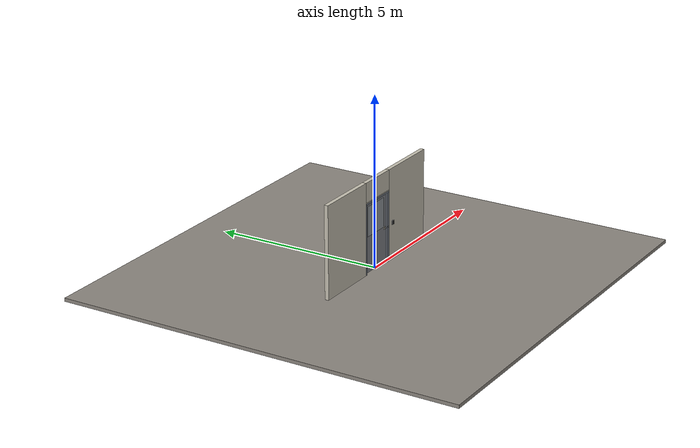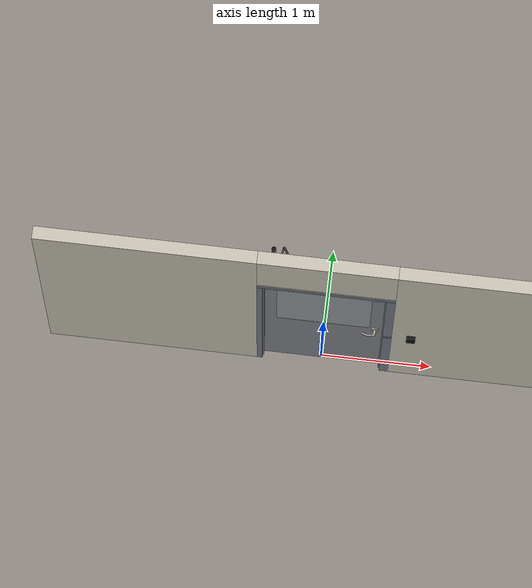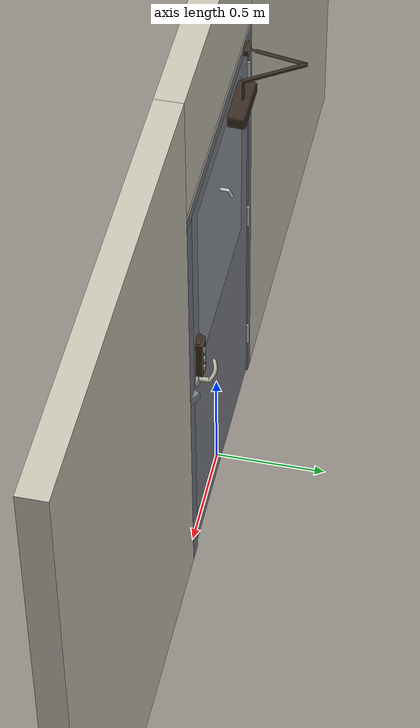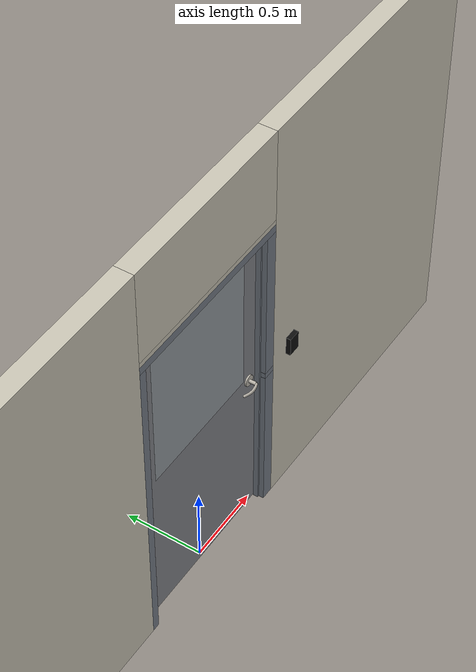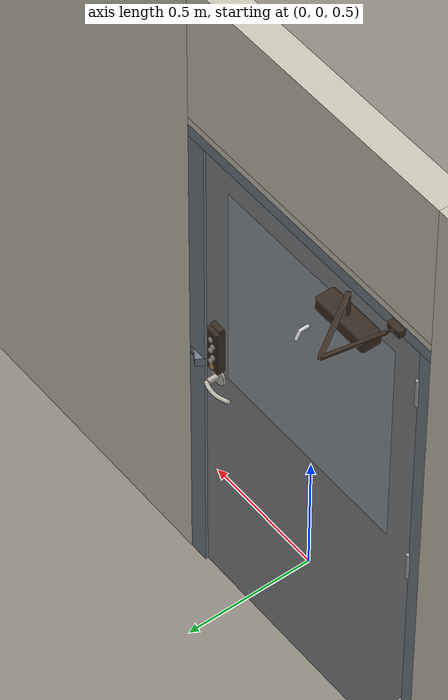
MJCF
<?xml version="1.0" ?>
<mujoco model="db0861_swing_single_full">
  <compiler angle="radian" meshdir="../../hardware" texturedir="../../textures" autolimits="true" inertiafromgeom="false"/>
  <option timestep="0.002" integrator="implicitfast" cone="elliptic" impratio="10" noslip_iterations="3">
    <flag multiccd="enable"/>
  </option>
  <size memory="16M"/>
  <default>
    <geom condim="4" solref="0.005 1" solimp="0.95 0.99 0.001"/>
    <joint solreflimit="0.005 1" solimplimit="0.95 0.99 0.001"/>
    <tendon solreflimit="0.005 1"/>
    <equality solref="0.002 1"/>
  </default>
  <visual>
    <headlight ambient="0.4 0.4 0.4" diffuse="0.7 0.7 0.7" specular="0.2 0.2 0.2"/>
    <quality shadowsize="4096"/>
    <map znear="0.01" zfar="60"/>
  </visual>
  <asset>
    <mesh name="closer_body_b226fdb10b" file="closer_body_b226fdb10b.obj"/>
    <mesh name="coat_hook_d622d37ad0" file="coat_hook_d622d37ad0.obj"/>
    <mesh name="hinge_e22b26c0c1" file="hinge_e22b26c0c1.obj"/>
    <mesh name="hinge_jamb_e1d088f8dc" file="hinge_jamb_e1d088f8dc.obj"/>
    <mesh name="keypad_body_91eb8ded3e" file="keypad_body_91eb8ded3e.obj"/>
    <mesh name="lever_a61139b160" file="lever_a61139b160.obj"/>
    <material name="mat_floor" rgba="0.55 0.53 0.5 1" specular="0.2" shininess="0.15" reflectance="0"/>
    <material name="mat_wall" rgba="0.78 0.76 0.7 1" specular="0.2" shininess="0.1" reflectance="0"/>
    <material name="mat_leaf" rgba="0.5 0.51 0.53 1" specular="0.23" shininess="0.37" reflectance="0.02"/>
    <material name="mat_glass" rgba="0.85 0.92 0.95 0.25" specular="0.2" shininess="0.95" reflectance="0.1"/>
    <material name="mat_hinge" rgba="0.65 0.66 0.68 1" specular="0.74" shininess="0.5" reflectance="0.36"/>
    <material name="mat_op_nickel_satin" rgba="0.72 0.7 0.66 1" specular="0.8" shininess="0.65" reflectance="0.4"/>
    <material name="mat_trim" rgba="0.85 0.66 0.3 1" specular="0.8" shininess="0.75" reflectance="0.4"/>
    <material name="mat_keypad" rgba="0.22 0.17 0.13 1" specular="0.8" shininess="0.6" reflectance="0.4"/>
    <material name="mat_key" rgba="0.85 0.85 0.82 1" specular="0.2" shininess="0.5" reflectance="0"/>
    <material name="mat_bolt" rgba="0.75 0.76 0.77 1" specular="0.8" shininess="0.65" reflectance="0.4"/>
    <material name="mat_frame" rgba="0.45 0.48 0.52 1" specular="0.32" shininess="0.6" reflectance="0.08"/>
    <material name="mat_closer" rgba="0.22 0.17 0.13 1" specular="0.8" shininess="0.6" reflectance="0.4"/>
    <material name="mat_hook" rgba="0.9 0.9 0.92 1" specular="0.8" shininess="0.9" reflectance="0.4"/>
    <material name="mat_wallreader" rgba="0.05 0.05 0.05 1" specular="0.38" shininess="0.3" reflectance="0.12"/>
    <material name="mat_bumper_stop" rgba="0.08 0.08 0.08 1" specular="0.2" shininess="0.1" reflectance="0"/>
    <material name="mat_stop_base" rgba="0.9 0.9 0.92 1" specular="0.8" shininess="0.9" reflectance="0.4"/>
    <texture name="skybox" type="skybox" builtin="gradient" rgb1="0.6 0.7 0.85" rgb2="0.9 0.92 0.95" width="256" height="256"/>
  </asset>
  <worldbody>
    <light name="sun" pos="1.5 -2.5 4" dir="-0.3 0.5 -0.8" directional="true" diffuse="0.8 0.8 0.8" specular="0.3 0.3 0.3" castshadow="true"/>
    <light name="fill" pos="-1.5 2.5 3" dir="0.3 -0.5 -0.7" directional="true" diffuse="0.35 0.35 0.4" castshadow="false"/>
    <camera name="robot_view" pos="0 -2.570688 1.734312" xyaxes="1 0 0 0 0.26963 0.962964" fovy="52"/>
    <camera name="far_view" pos="0 2.513687 1.734312" xyaxes="-1 0 0 0 -0.26963 0.962964" fovy="52"/>
    <camera name="iso" pos="1.932062 -2.163938 2.141063" xyaxes="0.741536 0.670913 0 -0.242917 0.268487 0.932151" fovy="46"/>
    <camera name="detail_handle" pos="0.5534 -0.877 1.32" xyaxes="0.97561 0.219512 0 -0.070934 0.315262 0.94635" fovy="38"/>
    <geom name="floor" type="box" size="6 6 0.05" pos="0 0 -0.05" material="mat_floor" group="0" contype="1" conaffinity="1" friction="0.8 0.005 0.0001" density="2400"/>
    <geom name="wall_left" type="box" size="0.9565 0.0575 1.35" pos="-1.5435 -0.0285 1.35" material="mat_wall" group="0" contype="1" conaffinity="1" friction="0.6 0.005 0.0001" density="800"/>
    <geom name="wall_right" type="box" size="0.9415 0.0575 1.35" pos="1.5585 -0.0285 1.35" material="mat_wall" group="0" contype="1" conaffinity="1" friction="0.6 0.005 0.0001" density="800"/>
    <geom name="wall_header" type="box" size="0.602 0.0575 0.2875" pos="0.015 -0.0285 2.4125" material="mat_wall" group="0" contype="1" conaffinity="1" friction="0.6 0.005 0.0001" density="800"/>
    <geom name="hinge_0_jamb" type="mesh" mesh="hinge_jamb_e1d088f8dc" pos="-0.534 0.029 0.259" quat="0 1 0 0" material="mat_hinge" group="1" contype="0" conaffinity="0" density="7850"/>
    <geom name="hinge_1_jamb" type="mesh" mesh="hinge_jamb_e1d088f8dc" pos="-0.534 0.029 1.025" quat="0 1 0 0" material="mat_hinge" group="1" contype="0" conaffinity="0" density="7850"/>
    <geom name="hinge_2_jamb" type="mesh" mesh="hinge_jamb_e1d088f8dc" pos="-0.534 0.029 1.861" quat="0 1 0 0" material="mat_hinge" group="1" contype="0" conaffinity="0" density="7850"/>
    <geom name="jamb_hinge" type="box" size="0.025 0.0575 1.0225" pos="-0.562 -0.0285 1.0225" material="mat_frame" group="0" contype="1" conaffinity="1" friction="0.6 0.005 0.0001" density="300"/>
    <geom name="strike_1040_wall_n" type="box" size="0.04 0.03825 0.018" pos="0.577 -0.04775 1.04" material="mat_frame" group="0" contype="1" conaffinity="1" friction="0.6 0.005 0.0001" density="300"/>
    <geom name="strike_1040_wall_p" type="box" size="0.04 0.008 0.018" pos="0.577 0.0175 1.04" material="mat_frame" group="0" contype="1" conaffinity="1" friction="0.6 0.005 0.0001" density="300"/>
    <geom name="strike_1040_ramp" type="box" size="0.04 0.018028 0.018" pos="0.580282 0.018312 1.04" quat="0.957092 0 0 -0.289784" material="mat_frame" group="0" contype="1" conaffinity="1" friction="0.12 0.005 0.0001" density="300"/>
    <geom name="strike_1040_back" type="box" size="0.0285 0.0095 0.018" pos="0.5885 0 1.04" material="mat_frame" group="0" contype="1" conaffinity="1" friction="0.6 0.005 0.0001" density="300"/>
    <geom name="jamb_strike_0" type="box" size="0.04 0.0575 0.511" pos="0.577 -0.0285 0.511" material="mat_frame" group="0" contype="1" conaffinity="1" friction="0.6 0.005 0.0001" density="300"/>
    <geom name="jamb_strike_1" type="box" size="0.04 0.0575 0.4935" pos="0.577 -0.0285 1.5515" material="mat_frame" group="0" contype="1" conaffinity="1" friction="0.6 0.005 0.0001" density="300"/>
    <geom name="jamb_head" type="box" size="0.602 0.0575 0.025" pos="0.015 -0.0285 2.07" material="mat_frame" group="0" contype="1" conaffinity="1" friction="0.6 0.005 0.0001" density="300"/>
    <geom name="head_stud" type="box" size="0.602 0.0575 0.015" pos="0.015 -0.0285 2.11" material="mat_wall" group="0" contype="1" conaffinity="1" friction="0.6 0.005 0.0001" density="500"/>
    <geom name="stop_hinge" type="box" size="0.0055 0.016 1.0225" pos="-0.5315 -0.0385 1.0225" material="mat_frame" group="0" contype="1" conaffinity="1" friction="0.6 0.005 0.0001" density="300"/>
    <geom name="stop_strike" type="box" size="0.0055 0.016 1.0225" pos="0.5315 -0.0385 1.0225" material="mat_frame" group="0" contype="1" conaffinity="1" friction="0.6 0.005 0.0001" density="300"/>
    <geom name="stop_head" type="box" size="0.537 0.016 0.0055" pos="0 -0.0385 2.0395" material="mat_frame" group="0" contype="1" conaffinity="1" friction="0.6 0.005 0.0001" density="300"/>
    <geom name="closer_bracket" type="box" size="0.03 0.012 0.014" pos="-0.437 0.041 2.075" material="mat_closer" group="1" contype="0" conaffinity="0" density="2700"/>
    <geom name="wall_reader" type="box" size="0.04 0.015 0.06" pos="0.787 -0.101 1.1" material="mat_wallreader" group="0" contype="1" conaffinity="1" friction="0.6 0.005 0.0001" density="1000"/>
    <geom name="door_stop_base" type="cylinder" size="0.022 0.003" pos="-0.55 0.93595 0.003" material="mat_stop_base" group="0" contype="1" conaffinity="1" friction="0.6 0.005 0.0001" density="7850"/>
    <geom name="door_stop_post" type="cylinder" size="0.012 0.0245" pos="-0.55 0.93595 0.0305" material="mat_stop_base" group="0" contype="1" conaffinity="1" friction="0.6 0.005 0.0001" density="7850"/>
    <geom name="door_stop_bumper" type="cylinder" size="0.022 0.02" pos="-0.55 0.93595 0.075" material="mat_bumper_stop" group="0" contype="1" conaffinity="1" friction="0.6 0.005 0.0001" density="1100"/>
    <site name="approach_point" pos="0 -1.5 0" quat="1 0 0 0" size="0.05" rgba="0.2 0.9 0.2 0.5" group="4"/>
    <site name="goal_point" pos="0 1.5 0" quat="1 0 0 0" size="0.05" rgba="0.2 0.9 0.2 0.5" group="4"/>
    <site name="door_plane_center" pos="0 0 1.0225" quat="1 0 0 0" size="0.02" rgba="0.2 0.9 0.2 0.5" group="4"/>
    <body name="leaf" pos="-0.537 0 0">
      <inertial pos="0.492879 0.012222 1.197245" mass="52.92137" quat="0.525666 0.522406 0.466032 -0.483303" diaginertia="4.725530313 21.588691039 26.249608185"/>
      <joint name="leaf_hinge" type="hinge" axis="0 0 1" pos="0.003 0.029 0" limited="true" range="0 1.570796" damping="10.475663" frictionloss="0.888228" stiffness="15.673579" springref="-1.79155" armature="0.02"/>
      <geom name="leaf_slab" type="box" size="0.5335 0.022 1.016" pos="0.5365 0 1.025" material="mat_leaf" group="0" contype="1" conaffinity="1" friction="0.4 0.005 0.0001" density="1"/>
      <geom name="leaf_glass_0" type="box" size="0.41613 0.0228 0.43688" pos="0.5365 0 1.50252" material="mat_glass" group="1" contype="0" conaffinity="0" density="1"/>
      <geom name="hinge_0" type="mesh" mesh="hinge_e22b26c0c1" pos="0.003 0.029 0.259" quat="0 1 0 0" material="mat_hinge" group="1" contype="0" conaffinity="0" density="7850"/>
      <geom name="hinge_1" type="mesh" mesh="hinge_e22b26c0c1" pos="0.003 0.029 1.025" quat="0 1 0 0" material="mat_hinge" group="1" contype="0" conaffinity="0" density="7850"/>
      <geom name="hinge_2" type="mesh" mesh="hinge_e22b26c0c1" pos="0.003 0.029 1.861" quat="0 1 0 0" material="mat_hinge" group="1" contype="0" conaffinity="0" density="7850"/>
      <geom name="leaf_keypad_body" type="mesh" mesh="keypad_body_91eb8ded3e" pos="1 0.022 1.18" quat="0 0 0.707107 0.707107" material="mat_keypad" group="0" contype="1" conaffinity="1" friction="0.6 0.005 0.0001" density="2000"/>
      <geom name="leaf_keypad_cylinder" type="cylinder" size="0.009 0.002" pos="1 0.056 1.105" quat="0.707107 -0.707107 0 0" material="mat_trim" group="1" contype="0" conaffinity="0" density="7100"/>
      <geom name="leaf_latch_bolt_faceplate" type="box" size="0.0006 0.014 0.028" pos="1.0694 0 1.04" material="mat_bolt" group="1" contype="0" conaffinity="0" density="8500"/>
      <geom name="closer_body" type="mesh" mesh="closer_body_b226fdb10b" pos="0.3 0.022 1.952" quat="-0.707107 0.707107 0 0" material="mat_closer" group="1" contype="0" conaffinity="0" density="2000"/>
      <geom name="closer_body_col" type="box" size="0.12 0.04 0.03" pos="0.3 0.062 1.952" material="mat_closer" group="3" contype="1" conaffinity="1" rgba="0.8 0.3 0.3 0.25" friction="0.6 0.005 0.0001" density="2000"/>
      <geom name="closer_pinion_shaft" type="cylinder" size="0.008 0.0615" pos="0.3 0.064 2.0135" material="mat_closer" group="1" contype="0" conaffinity="0" density="2700"/>
      <geom name="coat_hook" type="mesh" mesh="coat_hook_d622d37ad0" pos="0.5365 0.022 1.691" quat="-0.707107 0.707107 0 0" material="mat_hook" group="2" contype="0" conaffinity="0" density="7000"/>
      <site name="leaf_edge_mid" pos="1.07 0 1.016" quat="1 0 0 0" size="0.02" rgba="0.2 0.9 0.2 0.5" group="4"/>
      <body name="leaf_handle" pos="1 0 1.04">
        <inertial pos="-0.022132 -0.050687 0" mass="0.463269" quat="-0.312008 0 0 0.950079" diaginertia="0.000227859 0.000847742 0.000992066"/>
        <joint name="leaf_handle_hinge" type="hinge" axis="0 -1 0" limited="true" range="0 0.87" damping="0.208392" frictionloss="0.052" stiffness="1" springref="-0.35" armature="0.01"/>
        <geom name="leaf_handle_spindle" type="cylinder" size="0.006 0.03" pos="0 0 0" quat="0.707107 -0.707107 0 0" material="mat_op_nickel_satin" group="1" contype="0" conaffinity="0" density="7850"/>
        <geom name="leaf_handle_lever_n" type="mesh" mesh="lever_a61139b160" pos="0 -0.022 0" quat="0.707107 0.707107 0 0" material="mat_op_nickel_satin" group="1" contype="0" conaffinity="0" density="3000"/>
        <geom name="leaf_handle_lever_col_n" type="capsule" size="0.008 0.048" pos="-0.056 -0.077 0" quat="0.707107 0 -0.707107 0" material="mat_op_nickel_satin" group="3" contype="1" conaffinity="1" rgba="0.8 0.3 0.3 0.25" friction="0.7 0.01 0.0001" density="3000"/>
        <geom name="leaf_handle_hub_col_n" type="cylinder" size="0.012 0.022" pos="0 -0.052 0" quat="0.707107 -0.707107 0 0" material="mat_op_nickel_satin" group="3" contype="1" conaffinity="1" rgba="0.8 0.3 0.3 0.25" friction="0.6 0.005 0.0001" density="3000"/>
        <site name="leaf_handle_grip_n" pos="-0.0896 -0.077 0" quat="1 0 0 0" size="0.012" rgba="0.2 0.9 0.2 0.5" group="4"/>
      </body>
      <body name="leaf_keypad_key_1" pos="1.006 0.054 1.232">
        <inertial pos="0 0.002 0" mass="0.001221" quat="0 0 0.707107 -0.707107" diaginertia="0.000000026 0.000000026 0.000000049"/>
        <joint name="leaf_keypad_key_1_slide" type="slide" axis="0 -1 0" limited="true" range="0 0.004" damping="17.146" frictionloss="0.05" stiffness="1500" springref="-0.004" armature="0.1"/>
        <geom name="leaf_keypad_key_1_geom" type="cylinder" size="0.009 0.002" pos="0 0.002 0" quat="0.707107 -0.707107 0 0" material="mat_key" group="0" contype="1" conaffinity="1" friction="0.6 0.005 0.0001" density="1200"/>
        <site name="leaf_keypad_key_1_press" pos="0 0.006 0" quat="1 0 0 0" size="0.008" rgba="0.2 0.9 0.2 0.5" group="4"/>
      </body>
      <body name="leaf_keypad_key_2" pos="0.994 0.054 1.206">
        <inertial pos="0 0.002 0" mass="0.001221" quat="0 0 0.707107 -0.707107" diaginertia="0.000000026 0.000000026 0.000000049"/>
        <joint name="leaf_keypad_key_2_slide" type="slide" axis="0 -1 0" limited="true" range="0 0.004" damping="17.146" frictionloss="0.05" stiffness="1500" springref="-0.004" armature="0.1"/>
        <geom name="leaf_keypad_key_2_geom" type="cylinder" size="0.009 0.002" pos="0 0.002 0" quat="0.707107 -0.707107 0 0" material="mat_key" group="0" contype="1" conaffinity="1" friction="0.6 0.005 0.0001" density="1200"/>
        <site name="leaf_keypad_key_2_press" pos="0 0.006 0" quat="1 0 0 0" size="0.008" rgba="0.2 0.9 0.2 0.5" group="4"/>
      </body>
      <body name="leaf_keypad_key_3" pos="1.006 0.054 1.18">
        <inertial pos="0 0.002 0" mass="0.001221" quat="0 0 0.707107 -0.707107" diaginertia="0.000000026 0.000000026 0.000000049"/>
        <joint name="leaf_keypad_key_3_slide" type="slide" axis="0 -1 0" limited="true" range="0 0.004" damping="17.146" frictionloss="0.05" stiffness="1500" springref="-0.004" armature="0.1"/>
        <geom name="leaf_keypad_key_3_geom" type="cylinder" size="0.009 0.002" pos="0 0.002 0" quat="0.707107 -0.707107 0 0" material="mat_key" group="0" contype="1" conaffinity="1" friction="0.6 0.005 0.0001" density="1200"/>
        <site name="leaf_keypad_key_3_press" pos="0 0.006 0" quat="1 0 0 0" size="0.008" rgba="0.2 0.9 0.2 0.5" group="4"/>
      </body>
      <body name="leaf_keypad_key_4" pos="0.994 0.054 1.154">
        <inertial pos="0 0.002 0" mass="0.001221" quat="0 0 0.707107 -0.707107" diaginertia="0.000000026 0.000000026 0.000000049"/>
        <joint name="leaf_keypad_key_4_slide" type="slide" axis="0 -1 0" limited="true" range="0 0.004" damping="17.146" frictionloss="0.05" stiffness="1500" springref="-0.004" armature="0.1"/>
        <geom name="leaf_keypad_key_4_geom" type="cylinder" size="0.009 0.002" pos="0 0.002 0" quat="0.707107 -0.707107 0 0" material="mat_key" group="0" contype="1" conaffinity="1" friction="0.6 0.005 0.0001" density="1200"/>
        <site name="leaf_keypad_key_4_press" pos="0 0.006 0" quat="1 0 0 0" size="0.008" rgba="0.2 0.9 0.2 0.5" group="4"/>
      </body>
      <body name="leaf_keypad_key_5" pos="1.006 0.054 1.128">
        <inertial pos="0 0.002 0" mass="0.001221" quat="0 0 0.707107 -0.707107" diaginertia="0.000000026 0.000000026 0.000000049"/>
        <joint name="leaf_keypad_key_5_slide" type="slide" axis="0 -1 0" limited="true" range="0 0.004" damping="17.146" frictionloss="0.05" stiffness="1500" springref="-0.004" armature="0.1"/>
        <geom name="leaf_keypad_key_5_geom" type="cylinder" size="0.009 0.002" pos="0 0.002 0" quat="0.707107 -0.707107 0 0" material="mat_key" group="0" contype="1" conaffinity="1" friction="0.6 0.005 0.0001" density="1200"/>
        <site name="leaf_keypad_key_5_press" pos="0 0.006 0" quat="1 0 0 0" size="0.008" rgba="0.2 0.9 0.2 0.5" group="4"/>
      </body>
      <body name="leaf_handle_out" pos="1 0 1.04">
        <inertial pos="-0.025007 0.057273 0" mass="0.41" quat="0.235955 0 0 0.971764" diaginertia="0.000156759 0.000717302 0.000791484"/>
        <joint name="leaf_handle_out_hinge" type="hinge" axis="0 -1 0" limited="true" range="0 0.06" damping="0.208382" frictionloss="0.052" stiffness="1" springref="-0.35" armature="0.01"/>
        <geom name="leaf_handle_out_lever_p" type="mesh" mesh="lever_a61139b160" pos="0 0.022 0" quat="-0.707107 0.707107 0 0" material="mat_op_nickel_satin" group="1" contype="0" conaffinity="0" density="3000"/>
        <geom name="leaf_handle_out_lever_col_p" type="capsule" size="0.008 0.048" pos="-0.056 0.077 0" quat="0.707107 0 -0.707107 0" material="mat_op_nickel_satin" group="3" contype="1" conaffinity="1" rgba="0.8 0.3 0.3 0.25" friction="0.7 0.01 0.0001" density="3000"/>
        <geom name="leaf_handle_out_hub_col_p" type="cylinder" size="0.012 0.022" pos="0 0.052 0" quat="0.707107 -0.707107 0 0" material="mat_op_nickel_satin" group="3" contype="1" conaffinity="1" rgba="0.8 0.3 0.3 0.25" friction="0.6 0.005 0.0001" density="3000"/>
        <site name="leaf_handle_out_grip_p" pos="-0.0896 0.077 0" quat="1 0 0 0" size="0.012" rgba="0.2 0.9 0.2 0.5" group="4"/>
      </body>
      <body name="leaf_latch_bolt" pos="1.07 0 1.04">
        <inertial pos="-0.0055 0 0" mass="0.074627" quat="0.92388 -0.382683 0 0" diaginertia="0.000002271 0.000013255 0.000013255"/>
        <joint name="leaf_latch_bolt_slide" type="slide" axis="-1 0 0" limited="true" range="0 0.019" damping="2" frictionloss="0.3" stiffness="550" springref="-0.01" armature="0.1"/>
        <geom name="leaf_latch_bolt_capsule" type="capsule" size="0.008 0.0165" pos="-0.0055 0 0" quat="0.707107 0 0.707107 0" material="mat_bolt" group="0" contype="1" conaffinity="1" friction="0.2 0.005 0.0001" density="8500"/>
      </body>
      <body name="closer_arm_main" pos="0.3 0.064 2.075" quat="0.472212 0 0 0.881485">
        <inertial pos="0.14 0 0" mass="0.12096" quat="1 0 0 0" diaginertia="0.000003588 0.00079128 0.000792852"/>
        <joint name="closer_pinion" type="hinge" axis="0 0 1" limited="false" damping="0.01" armature="0.002"/>
        <geom name="closer_arm_main_geom" type="box" size="0.14 0.008 0.005" pos="0.14 0 0" material="mat_closer" group="1" contype="0" conaffinity="0" density="2700"/>
        <body name="closer_arm_fore" pos="0.28 0 0" quat="-0.371222 0 0 -0.928544">
          <inertial pos="0.128088 0 0" mass="0.076531" quat="1 0 0 0" diaginertia="0.000001771 0.000437665 0.000438201"/>
          <joint name="closer_elbow" type="hinge" axis="0 0 1" limited="false" damping="0.01" armature="0.002"/>
          <geom name="closer_arm_fore_geom" type="box" size="0.1125 0.007 0.004" pos="0.1125 0 0" material="mat_closer" group="1" contype="0" conaffinity="0" density="2700"/>
          <geom name="closer_fore_neck" type="box" size="0.0175 0.003 0.003" pos="0.2425 0 0" material="mat_closer" group="1" contype="0" conaffinity="0" density="2700"/>
          <geom name="closer_fore_pivot" type="cylinder" size="0.005 0.012" pos="0.26 0 0" material="mat_closer" group="1" contype="0" conaffinity="0" density="2700"/>
        </body>
      </body>
    </body>
  </worldbody>
  <tendon>
    <fixed name="leaf_latch_bolt_coupling" limited="true" range="0 10">
      <joint joint="leaf_latch_bolt_slide" coef="1"/>
      <joint joint="leaf_handle_hinge" coef="-0.023457"/>
      <joint joint="leaf_handle_out_hinge" coef="-0.023457"/>
    </fixed>
  </tendon>
  <equality>
    <connect name="closer_arm_connect" body1="closer_arm_fore" body2="world" anchor="0.26 0 0" active="true"/>
  </equality>
  <contact>
    <exclude body1="closer_arm_main" body2="leaf"/>
    <exclude body1="closer_arm_fore" body2="leaf"/>
    <exclude body1="closer_arm_main" body2="closer_arm_fore"/>
  </contact>
  <sensor>
    <jointpos name="leaf_hinge_pos" joint="leaf_hinge"/>
    <jointvel name="leaf_hinge_vel" joint="leaf_hinge"/>
    <jointpos name="leaf_handle_hinge_pos" joint="leaf_handle_hinge"/>
    <jointvel name="leaf_handle_hinge_vel" joint="leaf_handle_hinge"/>
    <jointpos name="leaf_keypad_key_1_slide_pos" joint="leaf_keypad_key_1_slide"/>
    <jointvel name="leaf_keypad_key_1_slide_vel" joint="leaf_keypad_key_1_slide"/>
    <jointpos name="leaf_keypad_key_2_slide_pos" joint="leaf_keypad_key_2_slide"/>
    <jointvel name="leaf_keypad_key_2_slide_vel" joint="leaf_keypad_key_2_slide"/>
    <jointpos name="leaf_keypad_key_3_slide_pos" joint="leaf_keypad_key_3_slide"/>
    <jointvel name="leaf_keypad_key_3_slide_vel" joint="leaf_keypad_key_3_slide"/>
    <jointpos name="leaf_keypad_key_4_slide_pos" joint="leaf_keypad_key_4_slide"/>
    <jointvel name="leaf_keypad_key_4_slide_vel" joint="leaf_keypad_key_4_slide"/>
    <jointpos name="leaf_keypad_key_5_slide_pos" joint="leaf_keypad_key_5_slide"/>
    <jointvel name="leaf_keypad_key_5_slide_vel" joint="leaf_keypad_key_5_slide"/>
    <jointpos name="leaf_handle_out_hinge_pos" joint="leaf_handle_out_hinge"/>
    <jointvel name="leaf_handle_out_hinge_vel" joint="leaf_handle_out_hinge"/>
    <jointpos name="leaf_latch_bolt_slide_pos" joint="leaf_latch_bolt_slide"/>
    <jointvel name="leaf_latch_bolt_slide_vel" joint="leaf_latch_bolt_slide"/>
  </sensor>
</mujoco>
